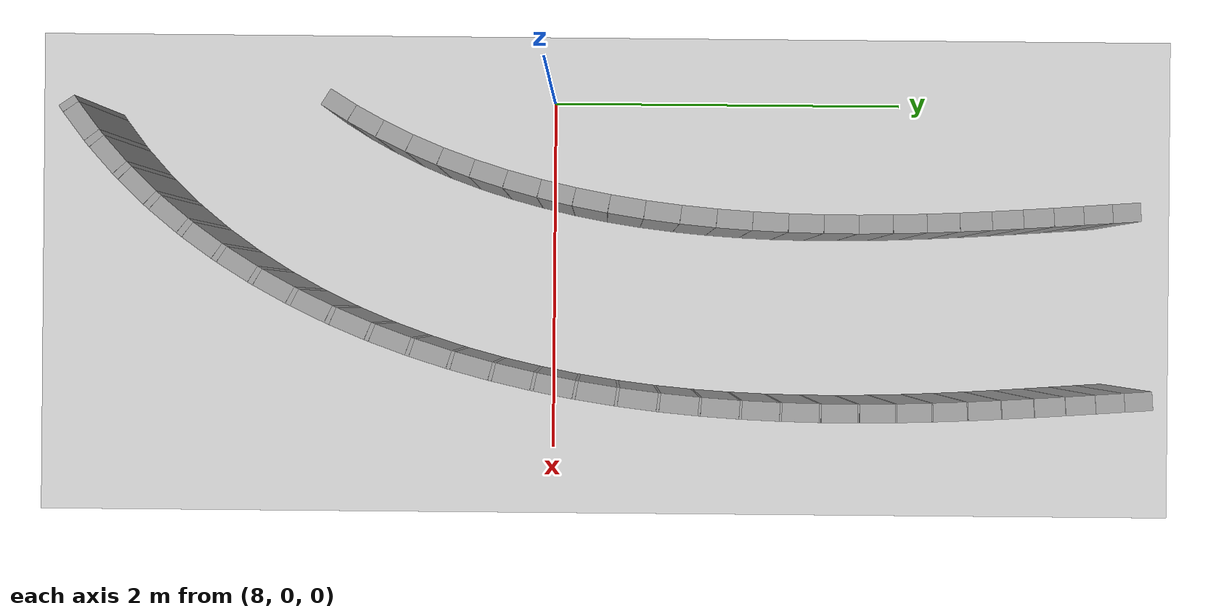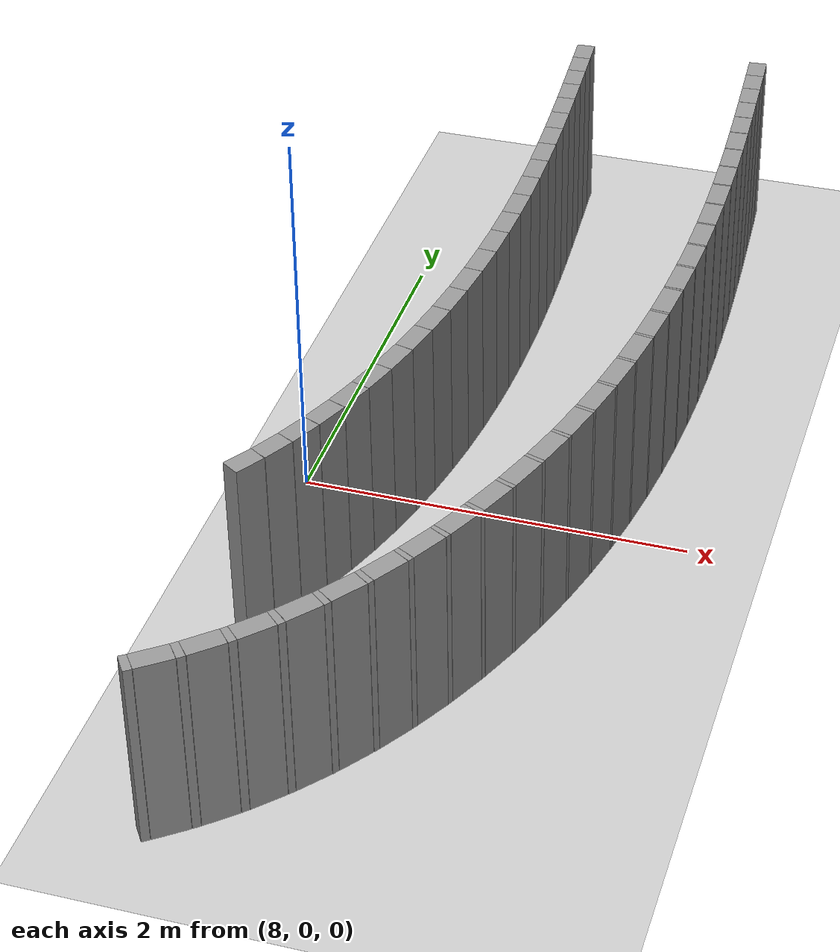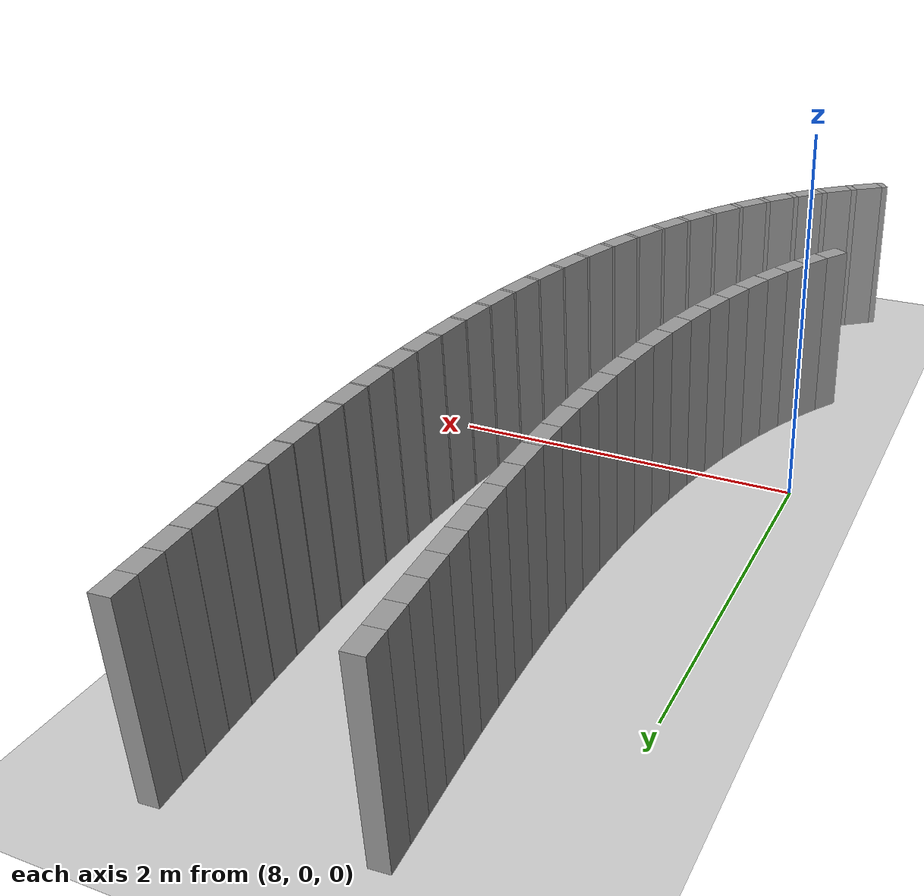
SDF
<sdf version="1.6">
 <world name="default">
  <include><uri>model://ground_plane</uri></include>
  <include><uri>model://sun</uri></include>
  <model name="wall_156_outward">
   <static>true</static>
   <link name="link">
    <collision name="collision">
     <geometry><box><size>0.1631370078991836 0.1 1.0</size></box></geometry>
    </collision>
    <visual name="visual">
     <geometry><box><size>0.1631370078991836 0.1 1.0</size></box></geometry>
     <material>
      <script><uri>file://media/materials/scripts/gazebo.material</uri><name>Gazebo/Gray</name></script>
     </material>
    </visual>
   </link>
   <pose>8.128993587637202 -1.1186348407029123 0.5 0 0 1.011522024071525</pose>
  </model>
  <model name="wall_157_outward">
   <static>true</static>
   <link name="link">
    <collision name="collision">
     <geometry><box><size>0.16831043082675046 0.1 1.0</size></box></geometry>
    </collision>
    <visual name="visual">
     <geometry><box><size>0.16831043082675046 0.1 1.0</size></box></geometry>
     <material>
      <script><uri>file://media/materials/scripts/gazebo.material</uri><name>Gazebo/Gray</name></script>
     </material>
    </visual>
   </link>
   <pose>8.212639608901572 -0.9756529366634783 0.5 0 0 1.0704989264986968</pose>
  </model>
  <model name="wall_158_outward">
   <static>true</static>
   <link name="link">
    <collision name="collision">
     <geometry><box><size>0.17306880570400301 0.1 1.0</size></box></geometry>
    </collision>
    <visual name="visual">
     <geometry><box><size>0.17306880570400301 0.1 1.0</size></box></geometry>
     <material>
      <script><uri>file://media/materials/scripts/gazebo.material</uri><name>Gazebo/Gray</name></script>
     </material>
    </visual>
   </link>
   <pose>8.290321889160369 -0.8237358234995437 0.5 0 0 1.1249672601689382</pose>
  </model>
  <model name="wall_159_outward">
   <static>true</static>
   <link name="link">
    <collision name="collision">
     <geometry><box><size>0.17729578739120488 0.1 1.0</size></box></geometry>
    </collision>
    <visual name="visual">
     <geometry><box><size>0.17729578739120488 0.1 1.0</size></box></geometry>
     <material>
      <script><uri>file://media/materials/scripts/gazebo.material</uri><name>Gazebo/Gray</name></script>
     </material>
    </visual>
   </link>
   <pose>8.36177650243934 -0.6638498435169142 0.5 0 0 1.175453859626568</pose>
  </model>
  <model name="wall_160_outward">
   <static>true</static>
   <link name="link">
    <collision name="collision">
     <geometry><box><size>0.18095847448255484 0.1 1.0</size></box></geometry>
    </collision>
    <visual name="visual">
     <geometry><box><size>0.18095847448255484 0.1 1.0</size></box></geometry>
     <material>
      <script><uri>file://media/materials/scripts/gazebo.material</uri><name>Gazebo/Gray</name></script>
     </material>
    </visual>
   </link>
   <pose>8.4267999912662 -0.4969943675870705 0.5 0 0 1.2224676811666433</pose>
  </model>
  <model name="wall_161_outward">
   <static>true</static>
   <link name="link">
    <collision name="collision">
     <geometry><box><size>0.1840690001953242 0.1 1.0</size></box></geometry>
    </collision>
    <visual name="visual">
     <geometry><box><size>0.1840690001953242 0.1 1.0</size></box></geometry>
     <material>
      <script><uri>file://media/materials/scripts/gazebo.material</uri><name>Gazebo/Gray</name></script>
     </material>
    </visual>
   </link>
   <pose>8.485268806549021 -0.3241458654748218 0.5 0 0 1.2663835035639879</pose>
  </model>
  <model name="wall_162_outward">
   <static>true</static>
   <link name="link">
    <collision name="collision">
     <geometry><box><size>0.1866441144249408 0.1 1.0</size></box></geometry>
    </collision>
    <visual name="visual">
     <geometry><box><size>0.1866441144249408 0.1 1.0</size></box></geometry>
     <material>
      <script><uri>file://media/materials/scripts/gazebo.material</uri><name>Gazebo/Gray</name></script>
     </material>
    </visual>
   </link>
   <pose>8.537141946322636 -0.1462366068855537 0.5 0 0 1.3075119560980817</pose>
  </model>
  <model name="wall_163_outward">
   <static>true</static>
   <link name="link">
    <collision name="collision">
     <geometry><box><size>0.18870588157974744 0.1 1.0</size></box></geometry>
    </collision>
    <visual name="visual">
     <geometry><box><size>0.18870588157974744 0.1 1.0</size></box></geometry>
     <material>
      <script><uri>file://media/materials/scripts/gazebo.material</uri><name>Gazebo/Gray</name></script>
     </material>
    </visual>
   </link>
   <pose>8.582456508733136 0.035849686068769704 0.5 0 0 1.3460522334356402</pose>
  </model>
  <model name="wall_164_outward">
   <static>true</static>
   <link name="link">
    <collision name="collision">
     <geometry><box><size>0.19025715744602192 0.1 1.0</size></box></geometry>
    </collision>
    <visual name="visual">
     <geometry><box><size>0.19025715744602192 0.1 1.0</size></box></geometry>
     <material>
      <script><uri>file://media/materials/scripts/gazebo.material</uri><name>Gazebo/Gray</name></script>
     </material>
    </visual>
   </link>
   <pose>8.621325482982815 0.2212702108509159 0.5 0 0 1.3821246973177053</pose>
  </model>
  <model name="wall_165_outward">
   <static>true</static>
   <link name="link">
    <collision name="collision">
     <geometry><box><size>0.19127813667916946 0.1 1.0</size></box></geometry>
    </collision>
    <visual name="visual">
     <geometry><box><size>0.19127813667916946 0.1 1.0</size></box></geometry>
     <material>
      <script><uri>file://media/materials/scripts/gazebo.material</uri><name>Gazebo/Gray</name></script>
     </material>
    </visual>
   </link>
   <pose>8.653931331642818 0.40920327118774624 0.5 0 0 1.4158036363986675</pose>
  </model>
  <model name="wall_166_outward">
   <static>true</static>
   <link name="link">
    <collision name="collision">
     <geometry><box><size>0.19174035529146213 0.1 1.0</size></box></geometry>
    </collision>
    <visual name="visual">
     <geometry><box><size>0.19174035529146213 0.1 1.0</size></box></geometry>
     <material>
      <script><uri>file://media/materials/scripts/gazebo.material</uri><name>Gazebo/Gray</name></script>
     </material>
    </visual>
   </link>
   <pose>8.680521306682628 0.598833881846959 0.5 0 0 1.447128102586341</pose>
  </model>
  <model name="wall_167_outward">
   <static>true</static>
   <link name="link">
    <collision name="collision">
     <geometry><box><size>0.19160703107006444 0.1 1.0</size></box></geometry>
    </collision>
    <visual name="visual">
     <geometry><box><size>0.19160703107006444 0.1 1.0</size></box></geometry>
     <material>
      <script><uri>file://media/materials/scripts/gazebo.material</uri><name>Gazebo/Gray</name></script>
     </material>
    </visual>
   </link>
   <pose>8.70140357017118 0.7893463852205038 0.5 0 0 1.476124340086819</pose>
  </model>
  <model name="wall_168_outward">
   <static>true</static>
   <link name="link">
    <collision name="collision">
     <geometry><box><size>0.1908517306693967 0.1 1.0</size></box></geometry>
    </collision>
    <visual name="visual">
     <geometry><box><size>0.1908517306693967 0.1 1.0</size></box></geometry>
     <material>
      <script><uri>file://media/materials/scripts/gazebo.material</uri><name>Gazebo/Gray</name></script>
     </material>
    </visual>
   </link>
   <pose>8.716943434260257 0.9799262453466737 0.5 0 0 1.502801176285816</pose>
  </model>
  <model name="wall_169_outward">
   <static>true</static>
   <link name="link">
    <collision name="collision">
     <geometry><box><size>0.1894625225161594 0.1 1.0</size></box></geometry>
    </collision>
    <visual name="visual">
     <geometry><box><size>0.1894625225161594 0.1 1.0</size></box></geometry>
     <material>
      <script><uri>file://media/materials/scripts/gazebo.material</uri><name>Gazebo/Gray</name></script>
     </material>
    </visual>
   </link>
   <pose>8.727558482016574 1.1697727254670132 0.5 0 0 1.5271691108640966</pose>
  </model>
  <model name="wall_170_outward">
   <static>true</static>
   <link name="link">
    <collision name="collision"><geometry><box><size>0.18745086621647 0.1 1.0</size></box></geometry></collision>
    <visual name="visual">
     <geometry><box><size>0.18745086621647 0.1 1.0</size></box></geometry>
     <material>
      <script><uri>file://media/materials/scripts/gazebo.material</uri><name>Gazebo/Gray</name></script>
     </material>
    </visual>
   </link>
   <pose>8.733711453852397 1.3581174804961935 0.5 0 0 1.5492271727756162</pose>
  </model>
  <model name="wall_171_outward">
   <static>true</static>
   <link name="link">
    <collision name="collision">
     <geometry><box><size>0.18486163532605535 0.1 1.0</size></box></geometry>
    </collision>
    <visual name="visual">
     <geometry><box><size>0.18486163532605535 0.1 1.0</size></box></geometry>
     <material>
      <script><uri>file://media/materials/scripts/gazebo.material</uri><name>Gazebo/Gray</name></script>
     </material>
    </visual>
   </link>
   <pose>8.735901214072884 1.544251776953153 0.5 0 0 1.568975086204383</pose>
  </model>
  <model name="wall_172_outward">
   <static>true</static>
   <link name="link">
    <collision name="collision">
     <geometry><box><size>0.1817647674760306 0.1 1.0</size></box></geometry>
    </collision>
    <visual name="visual">
     <geometry><box><size>0.1817647674760306 0.1 1.0</size></box></geometry>
     <material>
      <script><uri>file://media/materials/scripts/gazebo.material</uri><name>Gazebo/Gray</name></script>
     </material>
    </visual>
   </link>
   <pose>8.734653495788944 1.727553792455915 0.5 0 0 1.586378161170094</pose>
  </model>
  <model name="wall_173_outward">
   <static>true</static>
   <link name="link">
    <collision name="collision">
     <geometry><box><size>0.17824548664974268 0.1 1.0</size></box></geometry>
    </collision>
    <visual name="visual">
     <geometry><box><size>0.17824548664974268 0.1 1.0</size></box></geometry>
     <material>
      <script><uri>file://media/materials/scripts/gazebo.material</uri><name>Gazebo/Gray</name></script>
     </material>
    </visual>
   </link>
   <pose>8.730510552334385 1.9075061599033907 0.5 0 0 1.6013980795928768</pose>
  </model>
  <model name="wall_174_outward">
   <static>true</static>
   <link name="link">
    <collision name="collision">
     <geometry><box><size>0.1744007754955968 0.1 1.0</size></box></geometry>
    </collision>
    <visual name="visual">
     <geometry><box><size>0.1744007754955968 0.1 1.0</size></box></geometry>
     <material>
      <script><uri>file://media/materials/scripts/gazebo.material</uri><name>Gazebo/Gray</name></script>
     </material>
    </visual>
   </link>
   <pose>8.7240174895766 2.0837061956104215 0.5 0 0 1.6139996681585267</pose>
  </model>
  <model name="wall_175_outward">
   <static>true</static>
   <link name="link">
    <collision name="collision">
     <geometry><box><size>0.1703280734105496 0.1 1.0</size></box></geometry>
    </collision>
    <visual name="visual">
     <geometry><box><size>0.1703280734105496 0.1 1.0</size></box></geometry>
     <material>
      <script><uri>file://media/materials/scripts/gazebo.material</uri><name>Gazebo/Gray</name></script>
     </material>
    </visual>
   </link>
   <pose>8.715709129499041 2.255868037827235 0.5 0 0 1.6241561743513073</pose>
  </model>
  <model name="wall_176_outward">
   <static>true</static>
   <link name="link">
    <collision name="collision">
     <geometry><box><size>0.1661158601931843 0.1 1.0</size></box></geometry>
    </collision>
    <visual name="visual">
     <geometry><box><size>0.1661158601931843 0.1 1.0</size></box></geometry>
     <material>
      <script><uri>file://media/materials/scripts/gazebo.material</uri><name>Gazebo/Gray</name></script>
     </material>
    </visual>
   </link>
   <pose>8.706096664265658 2.423813888331357 0.5 0 0 1.6318794258622877</pose>
  </model>
  <model name="wall_177_outward">
   <static>true</static>
   <link name="link">
    <collision name="collision">
     <geometry><box><size>0.16183723346916842 0.1 1.0</size></box></geometry>
    </collision>
    <visual name="visual">
     <geometry><box><size>0.16183723346916842 0.1 1.0</size></box></geometry>
     <material>
      <script><uri>file://media/materials/scripts/gazebo.material</uri><name>Gazebo/Gray</name></script>
     </material>
    </visual>
   </link>
   <pose>8.695654344153592 2.5874570159262467 0.5 0 0 1.6372333579715226</pose>
  </model>
  <model name="wall_178_outward">
   <static>true</static>
   <link name="link">
    <collision name="collision">
     <geometry><box><size>0.15754447799560303 0.1 1.0</size></box></geometry>
    </collision>
    <visual name="visual">
     <geometry><box><size>0.15754447799560303 0.1 1.0</size></box></geometry>
     <material>
      <script><uri>file://media/materials/scripts/gazebo.material</uri><name>Gazebo/Gray</name></script>
     </material>
    </visual>
   </link>
   <pose>8.684807798406707 2.7467788911423856 0.5 0 0 1.6403503176470888</pose>
  </model>
  <model name="wall_179_outward">
   <static>true</static>
   <link name="link">
    <collision name="collision">
     <geometry><box><size>0.15312096966044925 0.1 1.0</size></box></geometry>
    </collision>
    <visual name="visual">
     <geometry><box><size>0.15312096966044925 0.1 1.0</size></box></geometry>
     <material>
      <script><uri>file://media/materials/scripts/gazebo.material</uri><name>Gazebo/Gray</name></script>
     </material>
    </visual>
   </link>
   <pose>8.673928379236784 2.9017301286795947 0.5 0 0 1.6414517284035783</pose>
  </model>
  <model name="wall_180_outward">
   <static>true</static>
   <link name="link">
    <collision name="collision">
     <geometry><box><size>0.14871708610244608 0.1 1.0</size></box></geometry>
    </collision>
    <visual name="visual">
     <geometry><box><size>0.14871708610244608 0.1 1.0</size></box></geometry>
     <material>
      <script><uri>file://media/materials/scripts/gazebo.material</uri><name>Gazebo/Gray</name></script>
     </material>
    </visual>
   </link>
   <pose>8.663320617502727 3.0522758895613613 0.5 0 0 1.6408233081770272</pose>
  </model>
  <model name="wall_290_inward">
   <static>true</static>
   <link name="link">
    <collision name="collision">
     <geometry><box><size>0.04146793440861326 0.1 1.0</size></box></geometry>
    </collision>
    <visual name="visual">
     <geometry><box><size>0.04146793440861326 0.1 1.0</size></box></geometry>
     <material>
      <script><uri>file://media/materials/scripts/gazebo.material</uri><name>Gazebo/Gray</name></script>
     </material>
    </visual>
   </link>
   <pose>8.13492660593446 -2.547466103680294 0.5 0 0 0.6014916486338889</pose>
  </model>
  <model name="wall_291_inward">
   <static>true</static>
   <link name="link">
    <collision name="collision">
     <geometry><box><size>0.18556333665148492 0.1 1.0</size></box></geometry>
    </collision>
    <visual name="visual">
     <geometry><box><size>0.18556333665148492 0.1 1.0</size></box></geometry>
     <material>
      <script><uri>file://media/materials/scripts/gazebo.material</uri><name>Gazebo/Gray</name></script>
     </material>
    </visual>
   </link>
   <pose>8.226276413657125 -2.4801036312950093 0.5 0 0 0.6429714768864395</pose>
  </model>
  <model name="wall_292_inward">
   <static>true</static>
   <link name="link">
    <collision name="collision">
     <geometry><box><size>0.04097597162746827 0.1 1.0</size></box></geometry>
    </collision>
    <visual name="visual">
     <geometry><box><size>0.04097597162746827 0.1 1.0</size></box></geometry>
     <material>
      <script><uri>file://media/materials/scripts/gazebo.material</uri><name>Gazebo/Gray</name></script>
     </material>
    </visual>
   </link>
   <pose>8.316410994467997 -2.4115282795605584 0.5 0 0 0.6839589238356957</pose>
  </model>
  <model name="wall_293_inward">
   <static>true</static>
   <link name="link">
    <collision name="collision">
     <geometry><box><size>0.18549826140365544 0.1 1.0</size></box></geometry>
    </collision>
    <visual name="visual">
     <geometry><box><size>0.18549826140365544 0.1 1.0</size></box></geometry>
     <material>
      <script><uri>file://media/materials/scripts/gazebo.material</uri><name>Gazebo/Gray</name></script>
     </material>
    </visual>
   </link>
   <pose>8.401716736046843 -2.337081096237191 0.5 0 0 0.7249463707849235</pose>
  </model>
  <model name="wall_294_inward">
   <static>true</static>
   <link name="link">
    <collision name="collision">
     <geometry><box><size>0.03944181044644733 0.1 1.0</size></box></geometry>
    </collision>
    <visual name="visual">
     <geometry><box><size>0.03944181044644733 0.1 1.0</size></box></geometry>
     <material>
      <script><uri>file://media/materials/scripts/gazebo.material</uri><name>Gazebo/Gray</name></script>
     </material>
    </visual>
   </link>
   <pose>8.485377231793521 -2.2619306878635967 0.5 0 0 0.7643984147144421</pose>
  </model>
  <model name="wall_295_inward">
   <static>true</static>
   <link name="link">
    <collision name="collision">
     <geometry><box><size>0.18661009755100771 0.1 1.0</size></box></geometry>
    </collision>
    <visual name="visual">
     <geometry><box><size>0.18661009755100771 0.1 1.0</size></box></geometry>
     <material>
      <script><uri>file://media/materials/scripts/gazebo.material</uri><name>Gazebo/Gray</name></script>
     </material>
    </visual>
   </link>
   <pose>8.564359808150389 -2.181099040014211 0.5 0 0 0.8038504586439608</pose>
  </model>
  <model name="wall_296_inward">
   <static>true</static>
   <link name="link">
    <collision name="collision">
     <geometry><box><size>0.037206635604533765 0.1 1.0</size></box></geometry>
    </collision>
    <visual name="visual">
     <geometry><box><size>0.037206635604533765 0.1 1.0</size></box></geometry>
     <material>
      <script><uri>file://media/materials/scripts/gazebo.material</uri><name>Gazebo/Gray</name></script>
     </material>
    </visual>
   </link>
   <pose>8.641510111136594 -2.1000502305014095 0.5 0 0 0.8410656840006839</pose>
  </model>
  <model name="wall_297_inward">
   <static>true</static>
   <link name="link">
    <collision name="collision">
     <geometry><box><size>0.1885873871218444 0.1 1.0</size></box></geometry>
    </collision>
    <visual name="visual">
     <geometry><box><size>0.1885873871218444 0.1 1.0</size></box></geometry>
     <material>
      <script><uri>file://media/materials/scripts/gazebo.material</uri><name>Gazebo/Gray</name></script>
     </material>
    </visual>
   </link>
   <pose>8.714116546637518 -2.0136117466345196 0.5 0 0 0.8782809093574099</pose>
  </model>
  <model name="wall_298_inward">
   <static>true</static>
   <link name="link">
    <collision name="collision">
     <geometry><box><size>0.03462382535949822 0.1 1.0</size></box></geometry>
    </collision>
    <visual name="visual">
     <geometry><box><size>0.03462382535949822 0.1 1.0</size></box></geometry>
     <material>
      <script><uri>file://media/materials/scripts/gazebo.material</uri><name>Gazebo/Gray</name></script>
     </material>
    </visual>
   </link>
   <pose>8.784906000704535 -1.927340621632611 0.5 0 0 0.9129116563453774</pose>
  </model>
  <model name="wall_299_inward">
   <static>true</static>
   <link name="link">
    <collision name="collision">
     <geometry><box><size>0.1911097670472859 0.1 1.0</size></box></geometry>
    </collision>
    <visual name="visual">
     <geometry><box><size>0.1911097670472859 0.1 1.0</size></box></geometry>
     <material>
      <script><uri>file://media/materials/scripts/gazebo.material</uri><name>Gazebo/Gray</name></script>
     </material>
    </visual>
   </link>
   <pose>8.851264783091931 -1.836052933662384 0.5 0 0 0.9475424033333932</pose>
  </model>
  <model name="wall_300_inward">
   <static>true</static>
   <link name="link">
    <collision name="collision">
     <geometry><box><size>0.031984354530331674 0.1 1.0</size></box></geometry>
    </collision>
    <visual name="visual">
     <geometry><box><size>0.031984354530331674 0.1 1.0</size></box></geometry>
     <material>
      <script><uri>file://media/materials/scripts/gazebo.material</uri><name>Gazebo/Gray</name></script>
     </material>
    </visual>
   </link>
   <pose>8.915952508852346 -1.7451866515190986 0.5 0 0 0.9795322137024636</pose>
  </model>
  <model name="wall_301_inward">
   <static>true</static>
   <link name="link">
    <collision name="collision">
     <geometry><box><size>0.19388587223573533 0.1 1.0</size></box></geometry>
    </collision>
    <visual name="visual">
     <geometry><box><size>0.19388587223573533 0.1 1.0</size></box></geometry>
     <material>
      <script><uri>file://media/materials/scripts/gazebo.material</uri><name>Gazebo/Gray</name></script>
     </material>
    </visual>
   </link>
   <pose>8.976301854734345 -1.649736612775759 0.5 0 0 1.0115220240715252</pose>
  </model>
  <model name="wall_302_inward">
   <static>true</static>
   <link name="link">
    <collision name="collision">
     <geometry><box><size>0.029484177693427142 0.1 1.0</size></box></geometry>
    </collision>
    <visual name="visual">
     <geometry><box><size>0.029484177693427142 0.1 1.0</size></box></geometry>
     <material>
      <script><uri>file://media/materials/scripts/gazebo.material</uri><name>Gazebo/Gray</name></script>
     </material>
    </visual>
   </link>
   <pose>9.03518687877871 -1.5548426925384924 0.5 0 0 1.0410104752851332</pose>
  </model>
  <model name="wall_303_inward">
   <static>true</static>
   <link name="link">
    <collision name="collision">
     <geometry><box><size>0.1966793826394522 0.1 1.0</size></box></geometry>
    </collision>
    <visual name="visual">
     <geometry><box><size>0.1966793826394522 0.1 1.0</size></box></geometry>
     <material>
      <script><uri>file://media/materials/scripts/gazebo.material</uri><name>Gazebo/Gray</name></script>
     </material>
    </visual>
   </link>
   <pose>9.08980899555402 -1.4558343453455005 0.5 0 0 1.0704989264986964</pose>
  </model>
  <model name="wall_304_inward">
   <static>true</static>
   <link name="link">
    <collision name="collision">
     <geometry><box><size>0.027230800363755057 0.1 1.0</size></box></geometry>
    </collision>
    <visual name="visual">
     <geometry><box><size>0.027230800363755057 0.1 1.0</size></box></geometry>
     <material>
      <script><uri>file://media/materials/scripts/gazebo.material</uri><name>Gazebo/Gray</name></script>
     </material>
    </visual>
   </link>
   <pose>9.143184602743624 -1.3574270588046713 0.5 0 0 1.0977330933337717</pose>
  </model>
  <model name="wall_305_inward">
   <static>true</static>
   <link name="link">
    <collision name="collision">
     <geometry><box><size>0.19931358820493578 0.1 1.0</size></box></geometry>
    </collision>
    <visual name="visual">
     <geometry><box><size>0.19931358820493578 0.1 1.0</size></box></geometry>
     <material>
      <script><uri>file://media/materials/scripts/gazebo.material</uri><name>Gazebo/Gray</name></script>
     </material>
    </visual>
   </link>
   <pose>9.192360599743463 -1.2553912563080747 0.5 0 0 1.124967260168933</pose>
  </model>
  <model name="wall_306_inward">
   <static>true</static>
   <link name="link">
    <collision name="collision">
     <geometry><box><size>0.02524061887406964 0.1 1.0</size></box></geometry>
    </collision>
    <visual name="visual">
     <geometry><box><size>0.02524061887406964 0.1 1.0</size></box></geometry>
     <material>
      <script><uri>file://media/materials/scripts/gazebo.material</uri><name>Gazebo/Gray</name></script>
     </material>
    </visual>
   </link>
   <pose>9.24048602522225 -1.1539551187254635 0.5 0 0 1.150210559897785</pose>
  </model>
  <model name="wall_307_inward">
   <static>true</static>
   <link name="link">
    <collision name="collision">
     <geometry><box><size>0.20167573963089488 0.1 1.0</size></box></geometry>
    </collision>
    <visual name="visual">
     <geometry><box><size>0.20167573963089488 0.1 1.0</size></box></geometry>
     <material>
      <script><uri>file://media/materials/scripts/gazebo.material</uri><name>Gazebo/Gray</name></script>
     </material>
    </visual>
   </link>
   <pose>9.284473947717252 -1.0493749570208273 0.5 0 0 1.1754538596265733</pose>
  </model>
  <model name="wall_308_inward">
   <static>true</static>
   <link name="link">
    <collision name="collision">
     <geometry><box><size>0.023504745941884432 0.1 1.0</size></box></geometry>
    </collision>
    <visual name="visual">
     <geometry><box><size>0.023504745941884432 0.1 1.0</size></box></geometry>
     <material>
      <script><uri>file://media/materials/scripts/gazebo.material</uri><name>Gazebo/Gray</name></script>
     </material>
    </visual>
   </link>
   <pose>9.327579002494371 -0.9453660044938741 0.5 0 0 1.1989607703966436</pose>
  </model>
  <model name="wall_309_inward">
   <static>true</static>
   <link name="link">
    <collision name="collision">
     <geometry><box><size>0.2036948156745214 0.1 1.0</size></box></geometry>
    </collision>
    <visual name="visual">
     <geometry><box><size>0.2036948156745214 0.1 1.0</size></box></geometry>
     <material>
      <script><uri>file://media/materials/scripts/gazebo.material</uri><name>Gazebo/Gray</name></script>
     </material>
    </visual>
   </link>
   <pose>9.366612248245527 -0.838685853798014 0.5 0 0 1.2224676811666464</pose>
  </model>
  <model name="wall_310_inward">
   <static>true</static>
   <link name="link">
    <collision name="collision">
     <geometry><box><size>0.021956146740553757 0.1 1.0</size></box></geometry>
    </collision>
    <visual name="visual">
     <geometry><box><size>0.021956146740553757 0.1 1.0</size></box></geometry>
     <material>
      <script><uri>file://media/materials/scripts/gazebo.material</uri><name>Gazebo/Gray</name></script>
     </material>
    </visual>
   </link>
   <pose>9.404895201691042 -0.7325563780585614 0.5 0 0 1.2444255923653065</pose>
  </model>
  <model name="wall_311_inward">
   <static>true</static>
   <link name="link">
    <collision name="collision">
     <geometry><box><size>0.20533328340648369 0.1 1.0</size></box></geometry>
    </collision>
    <visual name="visual">
     <geometry><box><size>0.20533328340648369 0.1 1.0</size></box></geometry>
     <material>
      <script><uri>file://media/materials/scripts/gazebo.material</uri><name>Gazebo/Gray</name></script>
     </material>
    </visual>
   </link>
   <pose>9.43918743925482 -0.6242114644426131 0.5 0 0 1.26638350356398</pose>
  </model>
  <model name="wall_312_inward">
   <static>true</static>
   <link name="link">
    <collision name="collision">
     <geometry><box><size>0.020562776905664618 0.1 1.0</size></box></geometry>
    </collision>
    <visual name="visual">
     <geometry><box><size>0.020562776905664618 0.1 1.0</size></box></geometry>
     <material>
      <script><uri>file://media/materials/scripts/gazebo.material</uri><name>Gazebo/Gray</name></script>
     </material>
    </visual>
   </link>
   <pose>9.472839351131167 -0.5163951392513006 0.5 0 0 1.2869477298309702</pose>
  </model>
  <model name="wall_313_inward">
   <static>true</static>
   <link name="link">
    <collision name="collision">
     <geometry><box><size>0.20656393933047168 0.1 1.0</size></box></geometry>
    </collision>
    <visual name="visual">
     <geometry><box><size>0.20656393933047168 0.1 1.0</size></box></geometry>
     <material>
      <script><uri>file://media/materials/scripts/gazebo.material</uri><name>Gazebo/Gray</name></script>
     </material>
    </visual>
   </link>
   <pose>9.502598134867897 -0.40680224688666533 0.5 0 0 1.3075119560980895</pose>
  </model>
  <model name="wall_314_inward">
   <static>true</static>
   <link name="link">
    <collision name="collision">
     <geometry><box><size>0.019268946067674517 0.1 1.0</size></box></geometry>
    </collision>
    <visual name="visual">
     <geometry><box><size>0.019268946067674517 0.1 1.0</size></box></geometry>
     <material>
      <script><uri>file://media/materials/scripts/gazebo.material</uri><name>Gazebo/Gray</name></script>
     </material>
    </visual>
   </link>
   <pose>9.531805279538624 -0.29773026956495713 0.5 0 0 1.3267820947669005</pose>
  </model>
  <model name="wall_315_inward">
   <static>true</static>
   <link name="link">
    <collision name="collision">
     <geometry><box><size>0.2073612376937455 0.1 1.0</size></box></geometry>
    </collision>
    <visual name="visual">
     <geometry><box><size>0.2073612376937455 0.1 1.0</size></box></geometry>
     <material>
      <script><uri>file://media/materials/scripts/gazebo.material</uri><name>Gazebo/Gray</name></script>
     </material>
    </visual>
   </link>
   <pose>9.557238908191835 -0.18730803602409474 0.5 0 0 1.3460522334356395</pose>
  </model>
  <model name="wall_316_inward">
   <static>true</static>
   <link name="link">
    <collision name="collision">
     <geometry><box><size>0.01803525407553771 0.1 1.0</size></box></geometry>
    </collision>
    <visual name="visual">
     <geometry><box><size>0.01803525407553771 0.1 1.0</size></box></geometry>
     <material>
      <script><uri>file://media/materials/scripts/gazebo.material</uri><name>Gazebo/Gray</name></script>
     </material>
    </visual>
   </link>
   <pose>9.582195617766315 -0.07740920465915035 0.5 0 0 1.3640884653766632</pose>
  </model>
  <model name="wall_317_inward">
   <static>true</static>
   <link name="link">
    <collision name="collision">
     <geometry><box><size>0.20769678214073004 0.1 1.0</size></box></geometry>
    </collision>
    <visual name="visual">
     <geometry><box><size>0.20769678214073004 0.1 1.0</size></box></geometry>
     <material>
      <script><uri>file://media/materials/scripts/gazebo.material</uri><name>Gazebo/Gray</name></script>
     </material>
    </visual>
   </link>
   <pose>9.603523594662782 0.03342197694438458 0.5 0 0 1.3821246973176984</pose>
  </model>
  <model name="wall_318_inward">
   <static>true</static>
   <link name="link">
    <collision name="collision">
     <geometry><box><size>0.016838673696732365 0.1 1.0</size></box></geometry>
    </collision>
    <visual name="visual">
     <geometry><box><size>0.016838673696732365 0.1 1.0</size></box></geometry>
     <material>
      <script><uri>file://media/materials/scripts/gazebo.material</uri><name>Gazebo/Gray</name></script>
     </material>
    </visual>
   </link>
   <pose>9.624440407134891 0.1437228462103251 0.5 0 0 1.3989641668582338</pose>
  </model>
  <model name="wall_319_inward">
   <static>true</static>
   <link name="link">
    <collision name="collision">
     <geometry><box><size>0.20753042434333188 0.1 1.0</size></box></geometry>
    </collision>
    <visual name="visual">
     <geometry><box><size>0.20753042434333188 0.1 1.0</size></box></geometry>
     <material>
      <script><uri>file://media/materials/scripts/gazebo.material</uri><name>Gazebo/Gray</name></script>
     </material>
    </visual>
   </link>
   <pose>9.641898545497767 0.2545395359059337 0.5 0 0 1.415803636398671</pose>
  </model>
  <model name="wall_320_inward">
   <static>true</static>
   <link name="link">
    <collision name="collision">
     <geometry><box><size>0.01566159276291823 0.1 1.0</size></box></geometry>
    </collision>
    <visual name="visual">
     <geometry><box><size>0.01566159276291823 0.1 1.0</size></box></geometry>
     <material>
      <script><uri>file://media/materials/scripts/gazebo.material</uri><name>Gazebo/Gray</name></script>
     </material>
    </visual>
   </link>
   <pose>9.659004621584012 0.3648157888504336 0.5 0 0 1.4314658694924127</pose>
  </model>
  <model name="wall_321_inward">
   <static>true</static>
   <link name="link">
    <collision name="collision">
     <geometry><box><size>0.20682167956414657 0.1 1.0</size></box></geometry>
    </collision>
    <visual name="visual">
     <geometry><box><size>0.20682167956414657 0.1 1.0</size></box></geometry>
     <material>
      <script><uri>file://media/materials/scripts/gazebo.material</uri><name>Gazebo/Gray</name></script>
     </material>
    </visual>
   </link>
   <pose>9.672848225272816 0.47519177179744504 0.5 0 0 1.4471281025863436</pose>
  </model>
  <model name="wall_322_inward">
   <static>true</static>
   <link name="link">
    <collision name="collision">
     <geometry><box><size>0.014497610849148718 0.1 1.0</size></box></geometry>
    </collision>
    <visual name="visual">
     <geometry><box><size>0.014497610849148718 0.1 1.0</size></box></geometry>
     <material>
      <script><uri>file://media/materials/scripts/gazebo.material</uri><name>Gazebo/Gray</name></script>
     </material>
    </visual>
   </link>
   <pose>9.686394069127212 0.5850184972822889 0.5 0 0 1.4616262213366769</pose>
  </model>
  <model name="wall_323_inward">
   <static>true</static>
   <link name="link">
    <collision name="collision">
     <geometry><box><size>0.20552620298618013 0.1 1.0</size></box></geometry>
    </collision>
    <visual name="visual">
     <geometry><box><size>0.20552620298618013 0.1 1.0</size></box></geometry>
     <material>
      <script><uri>file://media/materials/scripts/gazebo.material</uri><name>Gazebo/Gray</name></script>
     </material>
    </visual>
   </link>
   <pose>9.696898111663193 0.6945270731116384 0.5 0 0 1.4761243400868174</pose>
  </model>
  <model name="wall_324_inward">
   <static>true</static>
   <link name="link">
    <collision name="collision">
     <geometry><box><size>0.013338022589139147 0.1 1.0</size></box></geometry>
    </collision>
    <visual name="visual">
     <geometry><box><size>0.013338022589139147 0.1 1.0</size></box></geometry>
     <material>
      <script><uri>file://media/materials/scripts/gazebo.material</uri><name>Gazebo/Gray</name></script>
     </material>
    </visual>
   </link>
   <pose>9.70715418897537 0.8034769618681765 0.5 0 0 1.4894627581862452</pose>
  </model>
  <model name="wall_325_inward">
   <static>true</static>
   <link name="link">
    <collision name="collision">
     <geometry><box><size>0.20361362037334688 0.1 1.0</size></box></geometry>
    </collision>
    <visual name="visual">
     <geometry><box><size>0.20361362037334688 0.1 1.0</size></box></geometry>
     <material>
      <script><uri>file://media/materials/scripts/gazebo.material</uri><name>Gazebo/Gray</name></script>
     </material>
    </visual>
   </link>
   <pose>9.714613042171315 0.9116954841385583 0.5 0 0 1.5028011762858189</pose>
  </model>
  <model name="wall_326_inward">
   <static>true</static>
   <link name="link">
    <collision name="collision">
     <geometry><box><size>0.012183665841626806 0.1 1.0</size></box></geometry>
    </collision>
    <visual name="visual">
     <geometry><box><size>0.012183665841626806 0.1 1.0</size></box></geometry>
     <material>
      <script><uri>file://media/materials/scripts/gazebo.material</uri><name>Gazebo/Gray</name></script>
     </material>
    </visual>
   </link>
   <pose>9.72186989463168 1.0193493889042973 0.5 0 0 1.5149851435749706</pose>
  </model>
  <model name="wall_327_inward">
   <static>true</static>
   <link name="link">
    <collision name="collision">
     <geometry><box><size>0.20106954671150104 0.1 1.0</size></box></geometry>
    </collision>
    <visual name="visual">
     <geometry><box><size>0.20106954671150104 0.1 1.0</size></box></geometry>
     <material>
      <script><uri>file://media/materials/scripts/gazebo.material</uri><name>Gazebo/Gray</name></script>
     </material>
    </visual>
   </link>
   <pose>9.72659437160051 1.1258708495038252 0.5 0 0 1.5271691108640904</pose>
  </model>
  <model name="wall_328_inward">
   <static>true</static>
   <link name="link">
    <collision name="collision">
     <geometry><box><size>0.01102880736277955 0.1 1.0</size></box></geometry>
    </collision>
    <visual name="visual">
     <geometry><box><size>0.01102880736277955 0.1 1.0</size></box></geometry>
     <material>
      <script><uri>file://media/materials/scripts/gazebo.material</uri><name>Gazebo/Gray</name></script>
     </material>
    </visual>
   </link>
   <pose>9.73115876036121 1.2318214364324782 0.5 0 0 1.5381981418198347</pose>
  </model>
  <model name="wall_329_inward">
   <static>true</static>
   <link name="link">
    <collision name="collision">
     <geometry><box><size>0.19790274410661932 0.1 1.0</size></box></geometry>
    </collision>
    <visual name="visual">
     <geometry><box><size>0.19790274410661932 0.1 1.0</size></box></geometry>
     <material>
      <script><uri>file://media/materials/scripts/gazebo.material</uri><name>Gazebo/Gray</name></script>
     </material>
    </visual>
   </link>
   <pose>9.733472619976261 1.3362612659069222 0.5 0 0 1.5492271727756206</pose>
  </model>
  <model name="wall_330_inward">
   <static>true</static>
   <link name="link">
    <collision name="collision">
     <geometry><box><size>0.009873796271561085 0.1 1.0</size></box></geometry>
    </collision>
    <visual name="visual">
     <geometry><box><size>0.009873796271561085 0.1 1.0</size></box></geometry>
     <material>
      <script><uri>file://media/materials/scripts/gazebo.material</uri><name>Gazebo/Gray</name></script>
     </material>
    </visual>
   </link>
   <pose>9.735664488556623 1.4401261818690734 0.5 0 0 1.5591011294900021</pose>
  </model>
  <model name="wall_331_inward">
   <static>true</static>
   <link name="link">
    <collision name="collision">
     <geometry><box><size>0.19414965268655898 0.1 1.0</size></box></geometry>
    </collision>
    <visual name="visual">
     <geometry><box><size>0.19414965268655898 0.1 1.0</size></box></geometry>
     <material>
      <script><uri>file://media/materials/scripts/gazebo.material</uri><name>Gazebo/Gray</name></script>
     </material>
    </visual>
   </link>
   <pose>9.73589902175451 1.5421374077288033 0.5 0 0 1.568975086204385</pose>
  </model>
  <model name="wall_332_inward">
   <static>true</static>
   <link name="link">
    <collision name="collision">
     <geometry><box><size>0.008701427674570873 0.1 1.0</size></box></geometry>
    </collision>
    <visual name="visual">
     <geometry><box><size>0.008701427674570873 0.1 1.0</size></box></geometry>
     <material>
      <script><uri>file://media/materials/scripts/gazebo.material</uri><name>Gazebo/Gray</name></script>
     </material>
    </visual>
   </link>
   <pose>9.736045884304104 1.6435626839371325 0.5 0 0 1.5776766236872277</pose>
  </model>
  <model name="wall_333_inward">
   <static>true</static>
   <link name="link">
    <collision name="collision">
     <geometry><box><size>0.18987069622972044 0.1 1.0</size></box></geometry>
    </collision>
    <visual name="visual">
     <geometry><box><size>0.18987069622972044 0.1 1.0</size></box></geometry>
     <material>
      <script><uri>file://media/materials/scripts/gazebo.material</uri><name>Gazebo/Gray</name></script>
     </material>
    </visual>
   </link>
   <pose>9.73453674332539 1.742837118299073 0.5 0 0 1.586378161170088</pose>
  </model>
  <model name="wall_334_inward">
   <static>true</static>
   <link name="link">
    <collision name="collision">
     <geometry><box><size>0.007509888618620754 0.1 1.0</size></box></geometry>
    </collision>
    <visual name="visual">
     <geometry><box><size>0.007509888618620754 0.1 1.0</size></box></geometry>
     <material>
      <script><uri>file://media/materials/scripts/gazebo.material</uri><name>Gazebo/Gray</name></script>
     </material>
    </visual>
   </link>
   <pose>9.732970835620208 1.8415148850289937 0.5 0 0 1.5938881203815236</pose>
  </model>
  <model name="wall_335_inward">
   <static>true</static>
   <link name="link">
    <collision name="collision">
     <geometry><box><size>0.1851509756823757 0.1 1.0</size></box></geometry>
    </collision>
    <visual name="visual">
     <geometry><box><size>0.1851509756823757 0.1 1.0</size></box></geometry>
     <material>
      <script><uri>file://media/materials/scripts/gazebo.material</uri><name>Gazebo/Gray</name></script>
     </material>
    </visual>
   </link>
   <pose>9.730051604876536 1.9378009725230139 0.5 0 0 1.6013980795928813</pose>
  </model>
  <model name="wall_336_inward">
   <static>true</static>
   <link name="link">
    <collision name="collision">
     <geometry><box><size>0.006300752592637793 0.1 1.0</size></box></geometry>
    </collision>
    <visual name="visual">
     <geometry><box><size>0.006300752592637793 0.1 1.0</size></box></geometry>
     <material>
      <script><uri>file://media/materials/scripts/gazebo.material</uri><name>Gazebo/Gray</name></script>
     </material>
    </visual>
   </link>
   <pose>9.727102844301065 2.033481348241163 0.5 0 0 1.6076988738756781</pose>
  </model>
  <model name="wall_337_inward">
   <static>true</static>
   <link name="link">
    <collision name="collision">
     <geometry><box><size>0.1800903627031489 0.1 1.0</size></box></geometry>
    </collision>
    <visual name="visual">
     <geometry><box><size>0.1800903627031489 0.1 1.0</size></box></geometry>
     <material>
      <script><uri>file://media/materials/scripts/gazebo.material</uri><name>Gazebo/Gray</name></script>
     </material>
    </visual>
   </link>
   <pose>9.723097571166445 2.1265907381570486 0.5 0 0 1.6139996681585205</pose>
  </model>
  <model name="wall_338_inward">
   <static>true</static>
   <link name="link">
    <collision name="collision">
     <geometry><box><size>0.005078231269534754 0.1 1.0</size></box></geometry>
    </collision>
    <visual name="visual">
     <geometry><box><size>0.005078231269534754 0.1 1.0</size></box></geometry>
     <material>
      <script><uri>file://media/materials/scripts/gazebo.material</uri><name>Gazebo/Gray</name></script>
     </material>
    </visual>
   </link>
   <pose>9.719085983629402 2.2190880533489397 0.5 0 0 1.619077921255073</pose>
  </model>
  <model name="wall_339_inward">
   <static>true</static>
   <link name="link">
    <collision name="collision">
     <geometry><box><size>0.17479804426128806 0.1 1.0</size></box></geometry>
    </collision>
    <visual name="visual">
     <geometry><box><size>0.17479804426128806 0.1 1.0</size></box></geometry>
     <material>
      <script><uri>file://media/materials/scripts/gazebo.material</uri><name>Gazebo/Gray</name></script>
     </material>
    </visual>
   </link>
   <pose>9.714302052979413 2.3088988372745782 0.5 0 0 1.6241561743513053</pose>
  </model>
  <model name="wall_340_inward">
   <static>true</static>
   <link name="link">
    <collision name="collision">
     <geometry><box><size>0.0038616161579776193 0.1 1.0</size></box></geometry>
    </collision>
    <visual name="visual">
     <geometry><box><size>0.0038616161579776193 0.1 1.0</size></box></geometry>
     <material>
      <script><uri>file://media/materials/scripts/gazebo.material</uri><name>Gazebo/Gray</name></script>
     </material>
    </visual>
   </link>
   <pose>9.709530243856738 2.3981011123943574 0.5 0 0 1.6280178001067618</pose>
  </model>
  <model name="wall_341_inward">
   <static>true</static>
   <link name="link">
    <collision name="collision">
     <geometry><box><size>0.16938516889304836 0.1 1.0</size></box></geometry>
    </collision>
    <visual name="visual">
     <geometry><box><size>0.16938516889304836 0.1 1.0</size></box></geometry>
     <material>
      <script><uri>file://media/materials/scripts/gazebo.material</uri><name>Gazebo/Gray</name></script>
     </material>
    </visual>
   </link>
   <pose>9.704249751376903 2.4845633937272646 0.5 0 0 1.6318794258622982</pose>
  </model>
  <model name="wall_342_inward">
   <static>true</static>
   <link name="link">
    <collision name="collision">
     <geometry><box><size>0.0026769628573527675 0.1 1.0</size></box></geometry>
    </collision>
    <visual name="visual">
     <geometry><box><size>0.0026769628573527675 0.1 1.0</size></box></geometry>
     <material>
      <script><uri>file://media/materials/scripts/gazebo.material</uri><name>Gazebo/Gray</name></script>
     </material>
    </visual>
   </link>
   <pose>9.698994398446256 2.5704337887935935 0.5 0 0 1.634556391916937</pose>
  </model>
  <model name="wall_343_inward">
   <static>true</static>
   <link name="link">
    <collision name="collision">
     <geometry><box><size>0.1639549602436212 0.1 1.0</size></box></geometry>
    </collision>
    <visual name="visual">
     <geometry><box><size>0.1639549602436212 0.1 1.0</size></box></geometry>
     <material>
      <script><uri>file://media/materials/scripts/gazebo.material</uri><name>Gazebo/Gray</name></script>
     </material>
    </visual>
   </link>
   <pose>9.693466779889931 2.6535661777636608 0.5 0 0 1.6372333579715124</pose>
  </model>
  <model name="wall_344_inward">
   <static>true</static>
   <link name="link">
    <collision name="collision">
     <geometry><box><size>0.0015584792069005438 0.1 1.0</size></box></geometry>
    </collision>
    <visual name="visual">
     <geometry><box><size>0.0015584792069005438 0.1 1.0</size></box></geometry>
     <material>
      <script><uri>file://media/materials/scripts/gazebo.material</uri><name>Gazebo/Gray</name></script>
     </material>
    </visual>
   </link>
   <pose>9.687971501208267 2.7361402440117297 0.5 0 0 1.6387918378091288</pose>
  </model>
  <model name="wall_345_inward">
   <static>true</static>
   <link name="link">
    <collision name="collision">
     <geometry><box><size>0.15859907126187714 0.1 1.0</size></box></geometry>
    </collision>
    <visual name="visual">
     <geometry><box><size>0.15859907126187714 0.1 1.0</size></box></geometry>
     <material>
      <script><uri>file://media/materials/scripts/gazebo.material</uri><name>Gazebo/Gray</name></script>
     </material>
    </visual>
   </link>
   <pose>9.68240740416924 2.8160254799260884 0.5 0 0 1.6403503176470895</pose>
  </model>
  <model name="wall_346_inward">
   <static>true</static>
   <link name="link">
    <collision name="collision">
     <geometry><box><size>0.0005507053504108561 0.1 1.0</size></box></geometry>
    </collision>
    <visual name="visual">
     <geometry><box><size>0.0005507053504108561 0.1 1.0</size></box></geometry>
     <material>
      <script><uri>file://media/materials/scripts/gazebo.material</uri><name>Gazebo/Gray</name></script>
     </material>
    </visual>
   </link>
   <pose>9.676876963398655 2.895407953225906 0.5 0 0 1.640901023026101</pose>
  </model>
  <model name="wall_347_inward">
   <static>true</static>
   <link name="link">
    <collision name="collision">
     <geometry><box><size>0.15323905099603416 0.1 1.0</size></box></geometry>
    </collision>
    <visual name="visual">
     <geometry><box><size>0.15323905099603416 0.1 1.0</size></box></geometry>
     <material>
      <script><uri>file://media/materials/scripts/gazebo.material</uri><name>Gazebo/Gray</name></script>
     </material>
    </visual>
   </link>
   <pose>9.671448595490508 2.97211098513945 0.5 0 0 1.641451728403586</pose>
  </model>
  <model name="wall_348_inward">
   <static>true</static>
   <link name="link">
    <collision name="collision">
     <geometry><box><size>0.14775292881384153 0.1 1.0</size></box></geometry>
    </collision>
    <visual name="visual">
     <geometry><box><size>0.14775292881384153 0.1 1.0</size></box></geometry>
     <material>
      <script><uri>file://media/materials/scripts/gazebo.material</uri><name>Gazebo/Gray</name></script>
     </material>
    </visual>
   </link>
   <pose>9.660870445640048 3.1222347456942714 0.5 0 0 1.6408226429061987</pose>
  </model>
 </world>
</sdf>
